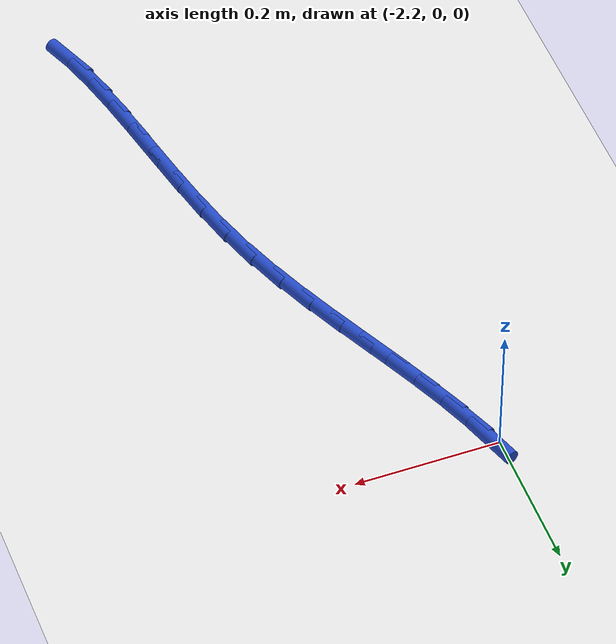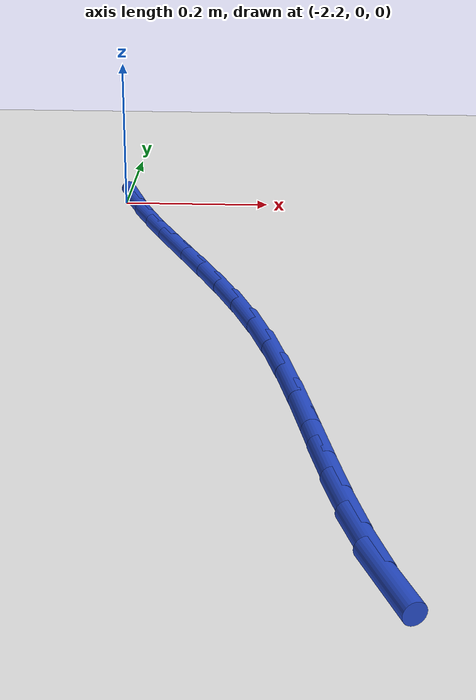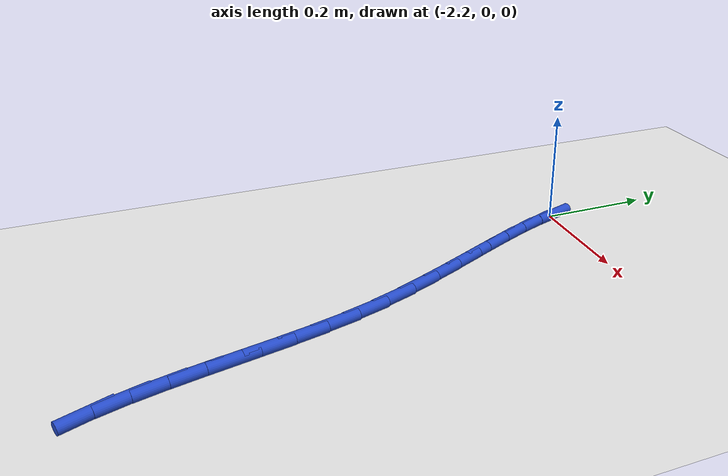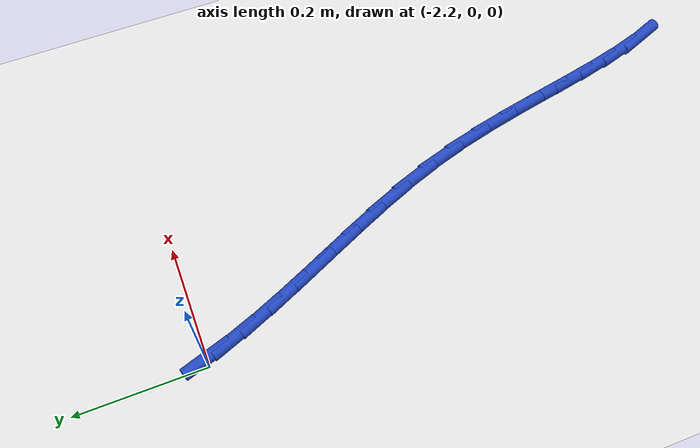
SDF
<sdf version="1.6">
 <world name="default">
  <model name="ground_plane">
   <static>1</static>
   <link name="link">
    <collision name="collision">
     <geometry><plane><normal>0 0 1</normal><size>100 100</size></plane></geometry>
     <surface><friction><ode><mu>100</mu><mu2>50</mu2></ode></friction></surface>
    </collision>
    <visual name="visual">
     <cast_shadows>0</cast_shadows>
     <geometry><plane><normal>0 0 1</normal><size>100 100</size></plane></geometry>
     <material>
      <script><uri>file://media/materials/scripts/gazebo.material</uri><name>Gazebo/WhiteGlow</name></script>
     </material>
    </visual>
   </link>
  </model>
  <model name="line">
   <link name="link_69">
    <pose>-2.1888558318679725 -0.0005653986587938614 0.01 0 1.57 -1.2481231924386886</pose>
    <collision name="collision">
     <geometry><cylinder><radius>0.01</radius><length>0.08</length></cylinder></geometry>
    </collision>
    <visual name="visual">
     <material>
      <script><name>Gazebo/Blue</name><uri>file://media/materials/scripts/gazebo.material</uri></script>
     </material>
     <geometry><cylinder><radius>0.01</radius><length>0.08</length></cylinder></geometry>
    </visual>
   </link>
   <link name="link_70">
    <pose>-2.1737213244980786 -0.045829678184249344 0.01 0 1.57 -1.1919288070272918</pose>
    <collision name="collision">
     <geometry><cylinder><radius>0.01</radius><length>0.08</length></cylinder></geometry>
    </collision>
    <visual name="visual">
     <material>
      <script><name>Gazebo/Blue</name><uri>file://media/materials/scripts/gazebo.material</uri></script>
     </material>
     <geometry><cylinder><radius>0.01</radius><length>0.08</length></cylinder></geometry>
    </visual>
   </link>
   <link name="link_71">
    <pose>-2.155345753462942 -0.09198783750397548 0.01 0 1.57 -1.1539913426041732</pose>
    <collision name="collision">
     <geometry><cylinder><radius>0.01</radius><length>0.08</length></cylinder></geometry>
    </collision>
    <visual name="visual">
     <material>
      <script><name>Gazebo/Blue</name><uri>file://media/materials/scripts/gazebo.material</uri></script>
     </material>
     <geometry><cylinder><radius>0.01</radius><length>0.08</length></cylinder></geometry>
    </visual>
   </link>
   <link name="link_72">
    <pose>-2.134514468295323 -0.1390380521771658 0.01 0 1.57 -1.1319542641162077</pose>
    <collision name="collision">
     <geometry><cylinder><radius>0.01</radius><length>0.08</length></cylinder></geometry>
    </collision>
    <visual name="visual">
     <material>
      <script><name>Gazebo/Blue</name><uri>file://media/materials/scripts/gazebo.material</uri></script>
     </material>
     <geometry><cylinder><radius>0.01</radius><length>0.08</length></cylinder></geometry>
    </visual>
   </link>
   <link name="link_73">
    <pose>-2.1120128185279854 -0.18697849776301456 0.01 0 1.57 -1.12412864717959</pose>
    <collision name="collision">
     <geometry><cylinder><radius>0.01</radius><length>0.08</length></cylinder></geometry>
    </collision>
    <visual name="visual">
     <material>
      <script><name>Gazebo/Blue</name><uri>file://media/materials/scripts/gazebo.material</uri></script>
     </material>
     <geometry><cylinder><radius>0.01</radius><length>0.08</length></cylinder></geometry>
    </visual>
   </link>
   <link name="link_74">
    <pose>-2.0886261536936916 -0.23580734982071344 0.01 0 1.57 -1.1294590071449844</pose>
    <collision name="collision">
     <geometry><cylinder><radius>0.01</radius><length>0.08</length></cylinder></geometry>
    </collision>
    <visual name="visual">
     <material>
      <script><name>Gazebo/Blue</name><uri>file://media/materials/scripts/gazebo.material</uri></script>
     </material>
     <geometry><cylinder><radius>0.01</radius><length>0.08</length></cylinder></geometry>
    </visual>
   </link>
   <link name="link_75">
    <pose>-2.0651398233252056 -0.2855227839094565 0.01 0 1.57 -1.1474402667561787</pose>
    <collision name="collision">
     <geometry><cylinder><radius>0.01</radius><length>0.08</length></cylinder></geometry>
    </collision>
    <visual name="visual">
     <material>
      <script><name>Gazebo/Blue</name><uri>file://media/materials/scripts/gazebo.material</uri></script>
     </material>
     <geometry><cylinder><radius>0.01</radius><length>0.08</length></cylinder></geometry>
    </visual>
   </link>
   <link name="link_76">
    <pose>-2.042339176955288 -0.33612297558843707 0.01 0 1.57 -1.178020911487044</pose>
    <collision name="collision">
     <geometry><cylinder><radius>0.01</radius><length>0.08</length></cylinder></geometry>
    </collision>
    <visual name="visual">
     <material>
      <script><name>Gazebo/Blue</name><uri>file://media/materials/scripts/gazebo.material</uri></script>
     </material>
     <geometry><cylinder><radius>0.01</radius><length>0.08</length></cylinder></geometry>
    </visual>
   </link>
   <link name="link_77">
    <pose>-2.021009564116701 -0.3876061004168484 0.01 0 1.57 -1.2214909163250625</pose>
    <collision name="collision">
     <geometry><cylinder><radius>0.01</radius><length>0.08</length></cylinder></geometry>
    </collision>
    <visual name="visual">
     <material>
      <script><name>Gazebo/Blue</name><uri>file://media/materials/scripts/gazebo.material</uri></script>
     </material>
     <geometry><cylinder><radius>0.01</radius><length>0.08</length></cylinder></geometry>
    </visual>
   </link>
   <link name="link_78">
    <pose>-2.0019363343422096 -0.4399703339538847 0.01 0 1.57 -1.275178385361914</pose>
    <collision name="collision">
     <geometry><cylinder><radius>0.01</radius><length>0.08</length></cylinder></geometry>
    </collision>
    <visual name="visual">
     <material>
      <script><name>Gazebo/Blue</name><uri>file://media/materials/scripts/gazebo.material</uri></script>
     </material>
     <geometry><cylinder><radius>0.01</radius><length>0.08</length></cylinder></geometry>
    </visual>
   </link>
   <link name="link_79">
    <pose>-1.9857383310637593 -0.49315852503173924 0.01 0 1.57 -1.3208078573087134</pose>
    <collision name="collision">
     <geometry><cylinder><radius>0.01</radius><length>0.08</length></cylinder></geometry>
    </collision>
    <visual name="visual">
     <material>
      <script><name>Gazebo/Blue</name><uri>file://media/materials/scripts/gazebo.material</uri></script>
     </material>
     <geometry><cylinder><radius>0.01</radius><length>0.08</length></cylinder></geometry>
    </visual>
   </link>
   <link name="link_80">
    <pose>-1.9720458873098967 -0.546785059771894 0.01 0 1.57 -1.3518065181097747</pose>
    <collision name="collision">
     <geometry><cylinder><radius>0.01</radius><length>0.08</length></cylinder></geometry>
    </collision>
    <visual name="visual">
     <material>
      <script><name>Gazebo/Blue</name><uri>file://media/materials/scripts/gazebo.material</uri></script>
     </material>
     <geometry><cylinder><radius>0.01</radius><length>0.08</length></cylinder></geometry>
    </visual>
   </link>
   <link name="link_81">
    <pose>-1.9601259588150635 -0.6003435811143499 0.01 0 1.57 -1.3682480862006308</pose>
    <collision name="collision">
     <geometry><cylinder><radius>0.01</radius><length>0.08</length></cylinder></geometry>
    </collision>
    <visual name="visual">
     <material>
      <script><name>Gazebo/Blue</name><uri>file://media/materials/scripts/gazebo.material</uri></script>
     </material>
     <geometry><cylinder><radius>0.01</radius><length>0.08</length></cylinder></geometry>
    </visual>
   </link>
   <link name="link_82">
    <pose>-1.9492449406458563 -0.6533275457001284 0.01 0 1.57 -1.369788285758775</pose>
    <collision name="collision">
     <geometry><cylinder><radius>0.01</radius><length>0.08</length></cylinder></geometry>
    </collision>
    <visual name="visual">
     <material>
      <script><name>Gazebo/Blue</name><uri>file://media/materials/scripts/gazebo.material</uri></script>
     </material>
     <geometry><cylinder><radius>0.01</radius><length>0.08</length></cylinder></geometry>
    </visual>
   </link>
   <link name="link_83">
    <pose>-1.9386692278688737 -0.7052304101702489 0.01 0 1.57 -1.3554849504241748</pose>
    <collision name="collision">
     <geometry><cylinder><radius>0.01</radius><length>0.08</length></cylinder></geometry>
    </collision>
    <visual name="visual">
     <material>
      <script><name>Gazebo/Blue</name><uri>file://media/materials/scripts/gazebo.material</uri></script>
     </material>
     <geometry><cylinder><radius>0.01</radius><length>0.08</length></cylinder></geometry>
    </visual>
   </link>
   <link name="link_84">
    <pose>-1.9276652155507128 -0.7555456311657329 0.01 0 1.57 -1.323659008675549</pose>
    <collision name="collision">
     <geometry><cylinder><radius>0.01</radius><length>0.08</length></cylinder></geometry>
    </collision>
    <visual name="visual">
     <material>
      <script><name>Gazebo/Blue</name><uri>file://media/materials/scripts/gazebo.material</uri></script>
     </material>
     <geometry><cylinder><radius>0.01</radius><length>0.08</length></cylinder></geometry>
    </visual>
   </link>
   <link name="link_85">
    <pose>-1.9154992987579722 -0.8037666653276015 0.01 0 1.57 -1.2718086843079826</pose>
    <collision name="collision">
     <geometry><cylinder><radius>0.01</radius><length>0.08</length></cylinder></geometry>
    </collision>
    <visual name="visual">
     <material>
      <script><name>Gazebo/Blue</name><uri>file://media/materials/scripts/gazebo.material</uri></script>
     </material>
     <geometry><cylinder><radius>0.01</radius><length>0.08</length></cylinder></geometry>
    </visual>
   </link>
   <link name="link_86">
    <pose>-1.9014378725572494 -0.8493869692968757 0.01 0 1.57 -1.1966870253464001</pose>
    <collision name="collision">
     <geometry><cylinder><radius>0.01</radius><length>0.08</length></cylinder></geometry>
    </collision>
    <visual name="visual">
     <material>
      <script><name>Gazebo/Blue</name><uri>file://media/materials/scripts/gazebo.material</uri></script>
     </material>
     <geometry><cylinder><radius>0.01</radius><length>0.08</length></cylinder></geometry>
    </visual>
   </link>
  </model>
 </world>
</sdf>
